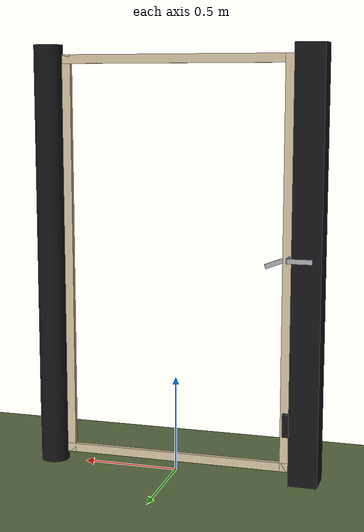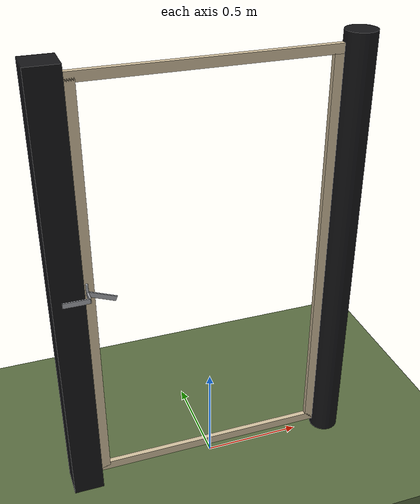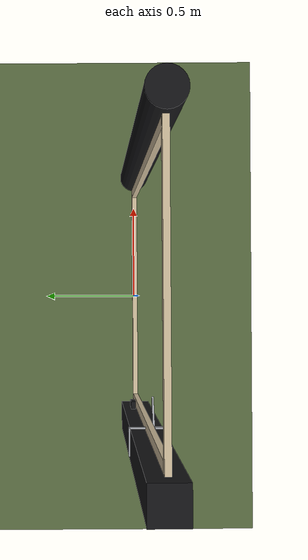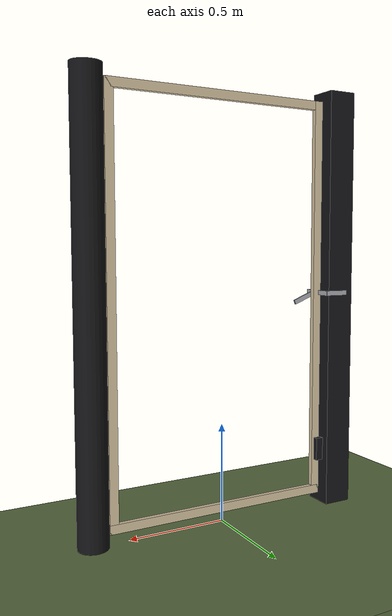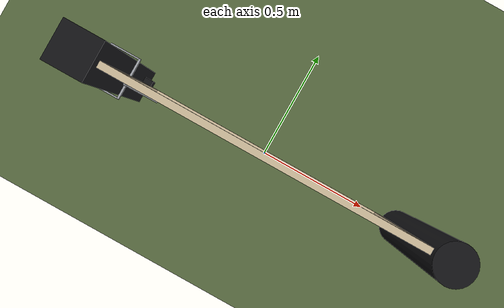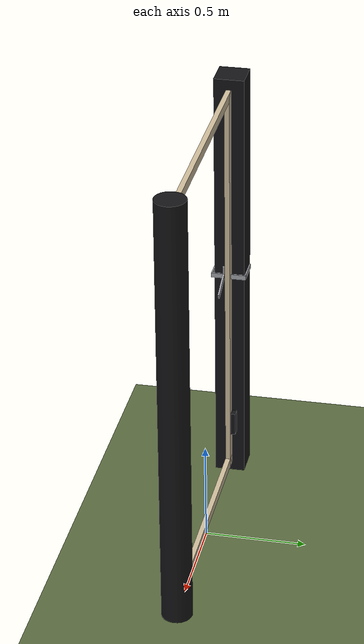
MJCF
<?xml version="1.0" ?>
<mujoco model="db0784_gate_swing_minimal">
  <compiler angle="radian" meshdir="../../hardware" texturedir="../../textures" autolimits="true" inertiafromgeom="false"/>
  <option timestep="0.002" integrator="implicitfast" cone="elliptic" impratio="10" noslip_iterations="3">
    <flag multiccd="enable"/>
  </option>
  <size memory="16M"/>
  <default>
    <geom condim="4" solref="0.005 1" solimp="0.95 0.99 0.001"/>
    <joint solreflimit="0.005 1" solimplimit="0.95 0.99 0.001"/>
    <tendon solreflimit="0.005 1"/>
    <equality solref="0.002 1"/>
  </default>
  <visual>
    <headlight ambient="0.4 0.4 0.4" diffuse="0.7 0.7 0.7" specular="0.2 0.2 0.2"/>
    <quality shadowsize="4096"/>
    <map znear="0.01" zfar="60"/>
  </visual>
  <asset>
    <material name="mat_floor" rgba="0.35 0.42 0.25 1" specular="0.2" shininess="0.15" reflectance="0"/>
    <material name="mat_wall" rgba="0.78 0.76 0.7 1" specular="0.2" shininess="0.1" reflectance="0"/>
    <material name="mat_leaf" rgba="0.82 0.75 0.62 1" specular="0.23" shininess="0.38" reflectance="0.02"/>
    <material name="mat_hinge" rgba="0.65 0.66 0.68 1" specular="0.74" shininess="0.5" reflectance="0.36"/>
    <material name="mat_op_steel_galvanized" rgba="0.65 0.66 0.68 1" specular="0.74" shininess="0.5" reflectance="0.36"/>
    <material name="mat_frame" rgba="0.08 0.08 0.09 1" specular="0.56" shininess="0.25" reflectance="0.24"/>
    <material name="mat_bumper_stop" rgba="0.08 0.08 0.08 1" specular="0.2" shininess="0.1" reflectance="0"/>
    <material name="mat_stop_base" rgba="0.9 0.9 0.92 1" specular="0.8" shininess="0.9" reflectance="0.4"/>
    <texture name="skybox" type="skybox" builtin="gradient" rgb1="0.6 0.7 0.85" rgb2="0.9 0.92 0.95" width="256" height="256"/>
  </asset>
  <worldbody>
    <light name="sun" pos="1.5 -2.5 4" dir="-0.3 0.5 -0.8" directional="true" diffuse="0.8 0.8 0.8" specular="0.3 0.3 0.3" castshadow="true"/>
    <light name="fill" pos="-1.5 2.5 3" dir="0.3 -0.5 -0.7" directional="true" diffuse="0.35 0.35 0.4" castshadow="false"/>
    <camera name="robot_view" pos="0 -2.6125 1.7915" xyaxes="1 0 0 0 0.26963 0.962964" fovy="52"/>
    <camera name="far_view" pos="0 2.6125 1.7915" xyaxes="-1 0 0 0 -0.26963 0.962964" fovy="52"/>
    <camera name="iso" pos="-1.9855 -2.1945 2.2095" xyaxes="0.741536 -0.670913 0 0.242917 0.268487 0.932151" fovy="46"/>
    <camera name="detail_handle" pos="-0.406 -0.8245 1.485" xyaxes="0.97561 0.219512 0 -0.070934 0.315262 0.94635" fovy="38"/>
    <geom name="floor" type="box" size="6 6 0.05" pos="0 0 -0.05" material="mat_floor" group="0" contype="1" conaffinity="1" friction="0.8 0.005 0.0001" density="2400"/>
    <geom name="post_hinge" type="cylinder" size="0.075 1.1" pos="0.681 0 1.1" material="mat_frame" group="0" contype="1" conaffinity="1" friction="0.6 0.005 0.0001" density="800"/>
    <geom name="post_latch" type="box" size="0.075 0.075 1.1" pos="-0.681 0 1.1" material="mat_frame" group="0" contype="1" conaffinity="1" friction="0.6 0.005 0.0001" density="800"/>
    <geom name="gate_stop" type="box" size="0.02 0.012 0.06" pos="-0.586 0.0245 0.3" material="mat_frame" group="0" contype="1" conaffinity="1" friction="0.6 0.005 0.0001" density="800"/>
    <site name="approach_point" pos="0 -1.5 0" quat="1 0 0 0" size="0.05" rgba="0.2 0.9 0.2 0.5" group="4"/>
    <site name="goal_point" pos="0 1.5 0" quat="1 0 0 0" size="0.05" rgba="0.2 0.9 0.2 0.5" group="4"/>
    <site name="door_plane_center" pos="0 0 1.06" quat="1 0 0 0" size="0.02" rgba="0.2 0.9 0.2 0.5" group="4"/>
    <body name="leaf" pos="0.606 0 0">
      <inertial pos="-0.603 0 1.1" mass="72.394237" quat="0.5 0.5 0.5 -0.5" diaginertia="8.692111039 26.610552714 35.295122687"/>
      <joint name="leaf_hinge" type="hinge" axis="0 0 1" pos="-0.003 -0.05 0" limited="true" range="0 1.745329" damping="0.836434" frictionloss="4.395914" armature="0.02"/>
      <geom name="leaf_slab_col" type="box" size="0.6 0.0125 1.05" pos="-0.603 0 1.1" material="mat_leaf" group="3" contype="1" conaffinity="1" rgba="0.8 0.3 0.3 0.25" friction="0.45 0.005 0.0001" density="1"/>
      <geom name="leaf_rail_b" type="box" size="0.6 0.0125 0.0225" pos="-0.603 0 0.0725" material="mat_leaf" group="1" contype="0" conaffinity="0" density="1"/>
      <geom name="leaf_rail_t" type="box" size="0.6 0.0125 0.0225" pos="-0.603 0 2.1275" material="mat_leaf" group="1" contype="0" conaffinity="0" density="1"/>
      <geom name="leaf_stile_h" type="box" size="0.0225 0.0125 1.05" pos="-0.0255 0 1.1" material="mat_leaf" group="1" contype="0" conaffinity="0" density="1"/>
      <geom name="leaf_stile_l" type="box" size="0.0225 0.0125 1.05" pos="-1.1805 0 1.1" material="mat_leaf" group="1" contype="0" conaffinity="0" density="1"/>
      <site name="leaf_edge_mid" pos="-1.203 0 1.05" quat="1 0 0 0" size="0.02" rgba="0.2 0.9 0.2 0.5" group="4"/>
      <body name="leaf_fork" pos="-1.063 0 1.1">
        <inertial pos="-0.134316 -0.007655 0.0449" mass="0.252369" quat="0.400494 0.085372 0.037573 0.911539" diaginertia="0.000796403 0.001031722 0.001738066"/>
        <joint name="leaf_fork_hinge" type="hinge" axis="0 1 0" limited="true" range="0 1.2" damping="0.049205" frictionloss="0.008804" armature="0.0001"/>
        <geom name="leaf_fork_arm" type="box" size="0.069176 0.004 0.012" pos="-0.0645 -0.0245 0.025" quat="0.982958 0 0.183833 0" material="mat_op_steel_galvanized" group="0" contype="1" conaffinity="1" friction="0.6 0.005 0.0001" density="2500"/>
        <geom name="leaf_fork_tine_n" type="box" size="0.0625 0.003 0.012" pos="-0.1915 -0.084 0.05" material="mat_op_steel_galvanized" group="0" contype="1" conaffinity="1" friction="0.6 0.005 0.0001" density="2500"/>
        <geom name="leaf_fork_tine_p" type="box" size="0.0625 0.003 0.012" pos="-0.1915 0.084 0.05" material="mat_op_steel_galvanized" group="0" contype="1" conaffinity="1" friction="0.6 0.005 0.0001" density="2500"/>
        <geom name="leaf_fork_bridge" type="box" size="0.004 0.087 0.012" pos="-0.129 0 0.05" material="mat_op_steel_galvanized" group="0" contype="1" conaffinity="1" friction="0.6 0.005 0.0001" density="2500"/>
        <geom name="leaf_fork_handle" type="capsule" size="0.006 0.018" pos="-0.129 -0.0245 0.08" material="mat_op_steel_galvanized" group="0" contype="1" conaffinity="1" friction="0.7 0.01 0.0001" density="2500"/>
        <site name="leaf_fork_grip" pos="-0.129 -0.0245 0.105" quat="1 0 0 0" size="0.012" rgba="0.2 0.9 0.2 0.5" group="4"/>
      </body>
    </body>
  </worldbody>
  <sensor>
    <jointpos name="leaf_hinge_pos" joint="leaf_hinge"/>
    <jointvel name="leaf_hinge_vel" joint="leaf_hinge"/>
    <jointpos name="leaf_fork_hinge_pos" joint="leaf_fork_hinge"/>
    <jointvel name="leaf_fork_hinge_vel" joint="leaf_fork_hinge"/>
  </sensor>
</mujoco>
